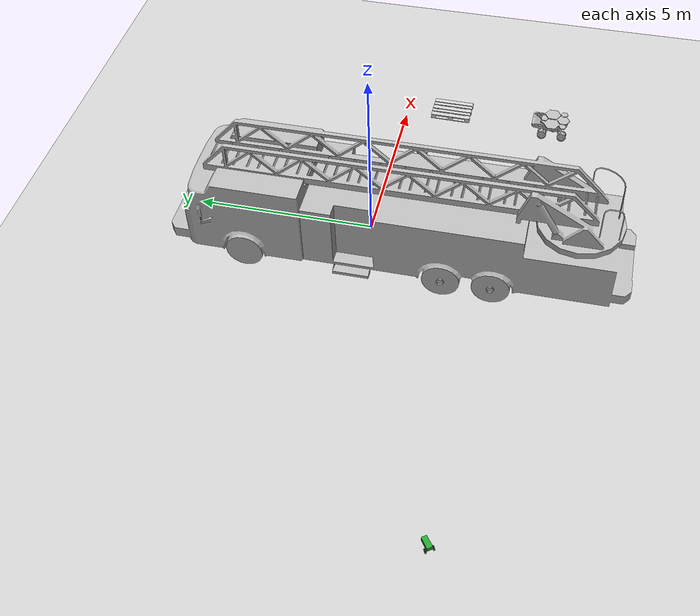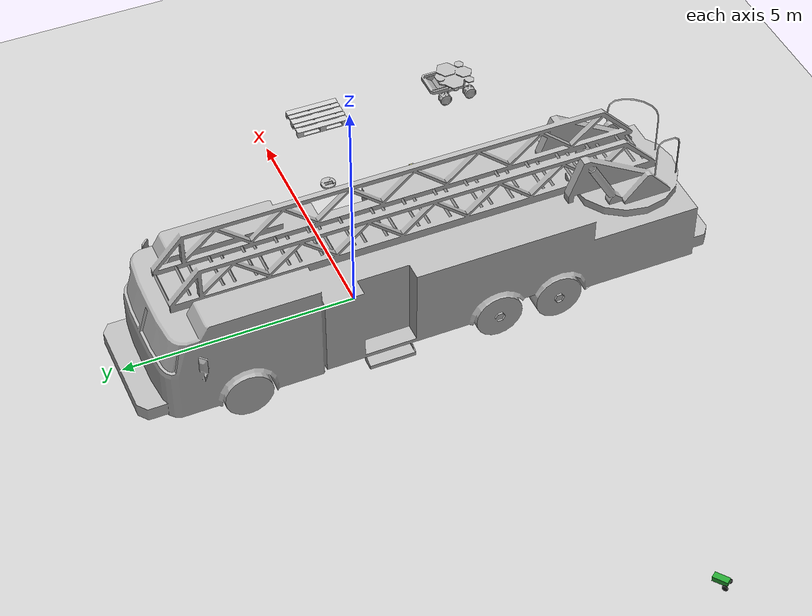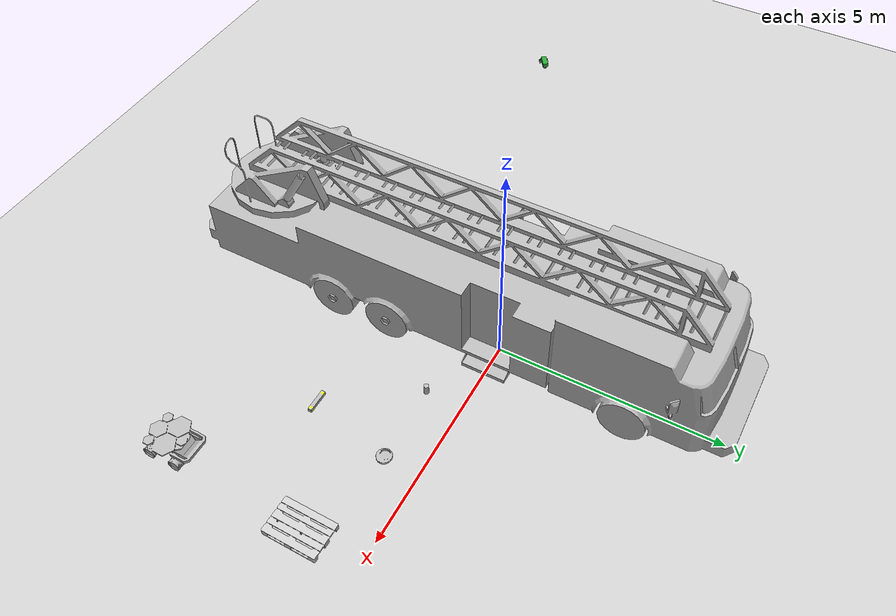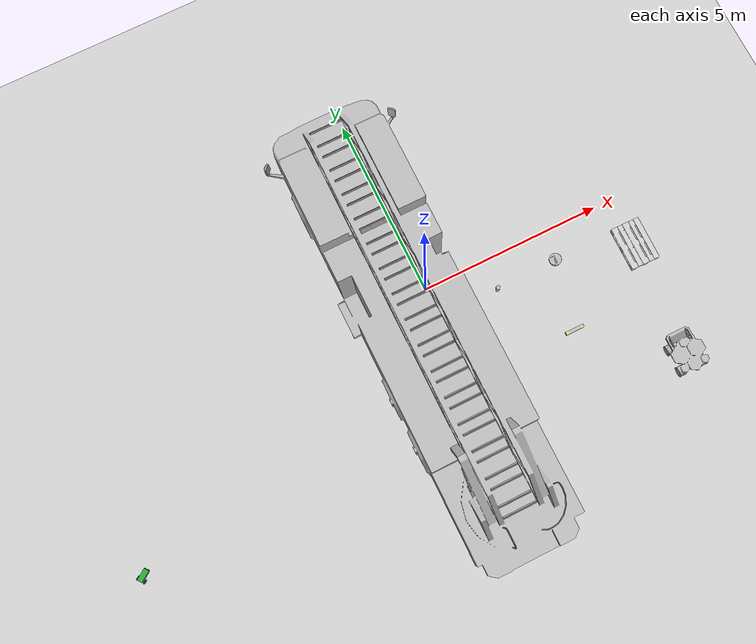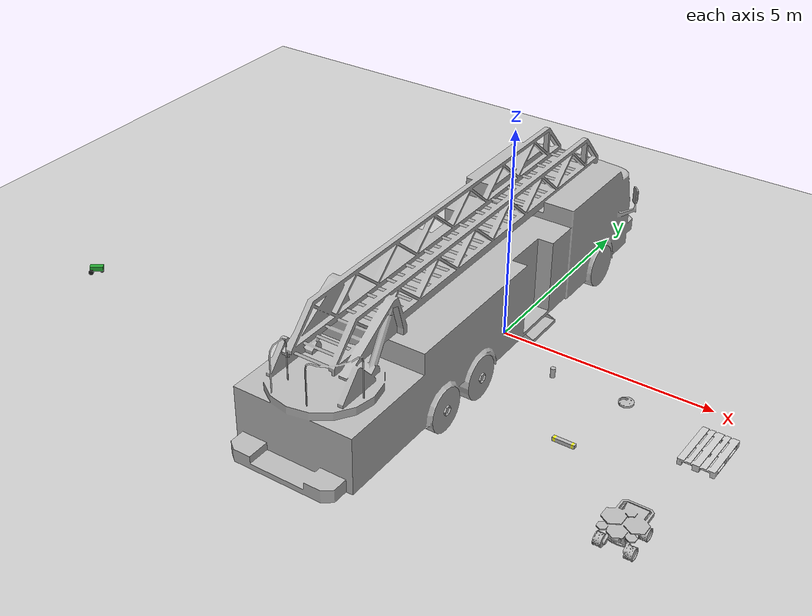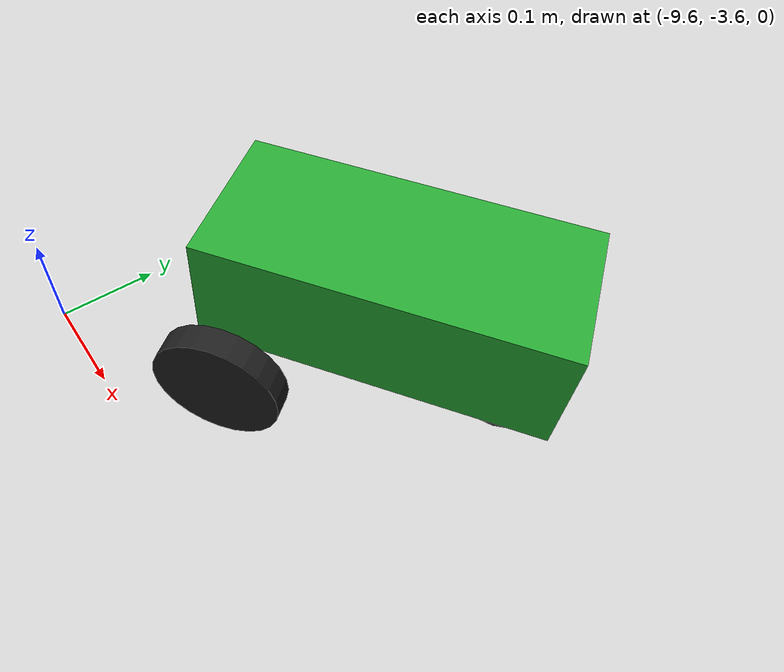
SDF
<sdf version="1.7">
 <world name="default">
  <light name="sun" type="directional">
   <pose>0 0 10 0 -0 0</pose>
   <diffuse>0.8 0.8 0.8 1</diffuse>
   <specular>0.2 0.2 0.2 1</specular>
   <attenuation>
    <range>1000</range>
    <constant>0.9</constant>
    <linear>0.01</linear>
    <quadratic>0.001</quadratic>
   </attenuation>
   <direction>-0.5 0.1 -0.9</direction>
   <spot><inner_angle>0</inner_angle><outer_angle>0</outer_angle><falloff>0</falloff></spot>
  </light>
  <model name="ground_plane">
   <static>1</static>
   <link name="link">
    <collision name="collision">
     <geometry><plane><normal>0 0 1</normal><size>100 100</size></plane></geometry>
     <surface>
      <contact><collide_bitmask>65535</collide_bitmask></contact>
      <friction><ode><mu>100</mu><mu2>50</mu2></ode></friction>
     </surface>
    </collision>
    <visual name="visual">
     <cast_shadows>0</cast_shadows>
     <geometry><plane><normal>0 0 1</normal><size>100 100</size></plane></geometry>
     <material>
      <script><uri>file://media/materials/scripts/gazebo.material</uri><name>Gazebo/Grey</name></script>
     </material>
    </visual>
   </link>
  </model>
  <gravity>0 0 -9.8</gravity>
  <magnetic_field>6e-06 2.3e-05 -4.2e-05</magnetic_field>
  <atmosphere type="adiabatic"/>
  <physics type="ode">
   <max_step_size>0.001</max_step_size>
   <real_time_factor>1</real_time_factor>
   <real_time_update_rate>1000</real_time_update_rate>
  </physics>
  <scene><ambient>0.4 0.4 0.4 1</ambient><background>0.7 0.7 0.7 1</background><shadows>1</shadows></scene>
  <audio><device>default</device></audio>
  <spherical_coordinates>
   <surface_model>EARTH_WGS84</surface_model>
   <latitude_deg>0</latitude_deg>
   <longitude_deg>0</longitude_deg>
   <elevation>0</elevation>
   <heading_deg>0</heading_deg>
  </spherical_coordinates>
  <model name="my_bot">
   <link name="base_link">
    <inertial>
     <pose>0.165 0 0.0625 0 -0 0</pose>
     <mass>0.6</mass>
     <inertia>
      <ixx>0.00525625</ixx>
      <ixy>0</ixy>
      <ixz>0.0005625</ixz>
      <iyy>0.00593125</iyy>
      <iyz>0</iyz>
      <izz>0.008275</izz>
     </inertia>
    </inertial>
    <collision name="base_link_fixed_joint_lump__chassis_collision">
     <pose>0.1245 0 0.075 0 -0 0</pose>
     <geometry><box><size>0.315 0.14 0.11</size></box></geometry>
    </collision>
    <collision name="base_link_fixed_joint_lump__caster_wheel_collision_1">
     <pose>0.24 0 0 0 -0 0</pose>
     <geometry><sphere><radius>0.05</radius></sphere></geometry>
     <surface><friction><ode><mu>0.001</mu><mu2>0.001</mu2></ode></friction></surface>
    </collision>
    <visual name="base_link_fixed_joint_lump__chassis_visual">
     <pose>0.1245 0 0.075 0 -0 0</pose>
     <geometry><box><size>0.315 0.14 0.11</size></box></geometry>
     <material>
      <script><name>Gazebo/Green</name><uri>file://media/materials/scripts/gazebo.material</uri></script>
     </material>
    </visual>
    <visual name="base_link_fixed_joint_lump__caster_wheel_visual_1">
     <pose>0.24 0 0 0 -0 0</pose>
     <geometry><sphere><radius>0.05</radius></sphere></geometry>
     <material>
      <script><name>Gazebo/Black</name><uri>file://media/materials/scripts/gazebo.material</uri></script>
     </material>
    </visual>
   </link>
   <joint name="left_wheel_joint" type="revolute">
    <pose relative_to="base_link">0 0.1 0 -1.5708 0 0</pose>
    <parent>base_link</parent>
    <child>left_wheel</child>
    <axis>
     <xyz>0 0 1</xyz>
     <limit><lower>-1e+16</lower><upper>1e+16</upper></limit>
     <dynamics><spring_reference>0</spring_reference><spring_stiffness>0</spring_stiffness></dynamics>
    </axis>
   </joint>
   <link name="left_wheel">
    <pose relative_to="left_wheel_joint">0 0 0 0 -0 0</pose>
    <inertial>
     <mass>0.1</mass>
     <inertia>
      <ixx>7.58333e-05</ixx>
      <ixy>0</ixy>
      <ixz>0</ixz>
      <iyy>7.58333e-05</iyy>
      <iyz>0</iyz>
      <izz>0.000125</izz>
     </inertia>
    </inertial>
    <collision name="left_wheel_collision">
     <geometry><cylinder><length>0.025</length><radius>0.06</radius></cylinder></geometry>
    </collision>
    <visual name="left_wheel_visual">
     <geometry><cylinder><length>0.025</length><radius>0.06</radius></cylinder></geometry>
     <material>
      <script><name>Gazebo/Black</name><uri>file://media/materials/scripts/gazebo.material</uri></script>
     </material>
    </visual>
   </link>
   <joint name="right_wheel_joint" type="revolute">
    <pose relative_to="base_link">0 -0.1 0 1.5708 -0 0</pose>
    <parent>base_link</parent>
    <child>right_wheel</child>
    <axis>
     <xyz>0 0 -1</xyz>
     <limit><lower>-1e+16</lower><upper>1e+16</upper></limit>
     <dynamics><spring_reference>0</spring_reference><spring_stiffness>0</spring_stiffness></dynamics>
    </axis>
   </joint>
   <link name="right_wheel">
    <pose relative_to="right_wheel_joint">0 0 0 0 -0 0</pose>
    <inertial>
     <mass>0.1</mass>
     <inertia>
      <ixx>7.58333e-05</ixx>
      <ixy>0</ixy>
      <ixz>0</ixz>
      <iyy>7.58333e-05</iyy>
      <iyz>0</iyz>
      <izz>0.000125</izz>
     </inertia>
    </inertial>
    <collision name="right_wheel_collision">
     <geometry><cylinder><length>0.025</length><radius>0.06</radius></cylinder></geometry>
    </collision>
    <visual name="right_wheel_visual">
     <geometry><cylinder><length>0.025</length><radius>0.06</radius></cylinder></geometry>
     <material>
      <script><name>Gazebo/Black</name><uri>file://media/materials/scripts/gazebo.material</uri></script>
     </material>
    </visual>
   </link>
   <static>0</static>
   <plugin name="diff_drive" filename="libgazebo_ros_diff_drive.so">
    <left_joint>left_wheel_joint</left_joint>
    <right_joint>right_wheel_joint</right_joint>
    <wheel_separation>0.2</wheel_separation>
    <wheel_diameter>0.12</wheel_diameter>
    <max_wheel_torque>200</max_wheel_torque>
    <max_wheel_acceleration>10.0</max_wheel_acceleration>
    <odometry_frame>odom</odometry_frame>
    <robot_base_frame>base_link</robot_base_frame>
    <publish_odom>1</publish_odom>
    <publish_odom_tf>1</publish_odom_tf>
    <publish_wheel_tf>1</publish_wheel_tf>
   </plugin>
   <pose>-9.45415 -3.44014 0.060014 4e-06 0.041738 0.627051</pose>
  </model>
  <model name="beer">
   <link name="link">
    <pose>0 0 0.115 0 -0 0</pose>
    <inertial>
     <mass>0.39</mass>
     <inertia><ixx>0.00058</ixx><ixy>0</ixy><ixz>0</ixz><iyy>0.00058</iyy><iyz>0</iyz><izz>0.00019</izz></inertia>
    </inertial>
    <collision name="collision">
     <geometry><cylinder><radius>0.055</radius><length>0.23</length></cylinder></geometry>
    </collision>
    <visual name="visual">
     <geometry><cylinder><radius>0.055</radius><length>0.23</length></cylinder></geometry>
     <material>
      <script>
       <uri>model://beer/materials/scripts</uri>
       <uri>model://beer/materials/textures</uri>
       <name>Beer/Diffuse</name>
      </script>
     </material>
    </visual>
   </link>
   <pose>1.67892 -0.832006 -7e-06 -0 -0 -1e-05</pose>
  </model>
  <model name="cinder_block_2">
   <link name="link">
    <inertial>
     <pose>0 0 0.071438 0 -0 0</pose>
     <mass>5</mass>
     <inertia>
      <ixx>0.06908</ixx>
      <ixy>0</ixy>
      <iyy>0.028705</iyy>
      <ixz>0</ixz>
      <iyz>0</iyz>
      <izz>0.073708</izz>
     </inertia>
    </inertial>
    <visual name="visual">
     <geometry><mesh><uri>model://cinder_block_2/meshes/cinder_block.dae</uri></mesh></geometry>
    </visual>
    <collision name="top">
     <pose>0 0 0.130175 0 -0 0</pose>
     <geometry><box><size>0.19368 0.396875 0.0254</size></box></geometry>
     <surface>
      <contact><ode><max_vel>0.1</max_vel><min_depth>0.001</min_depth></ode></contact>
      <friction><ode><mu>1</mu><mu2>1</mu2></ode></friction>
     </surface>
    </collision>
    <collision name="bottom">
     <pose>0 0 0.0127 0 -0 0</pose>
     <geometry><box><size>0.19368 0.396875 0.0254</size></box></geometry>
     <surface>
      <contact><ode><max_vel>0.1</max_vel><min_depth>0.001</min_depth></ode></contact>
      <friction><ode><mu>1</mu><mu2>1</mu2></ode></friction>
     </surface>
    </collision>
    <collision name="left">
     <pose>0 -0.185738 0.071438 0 -0 0</pose>
     <geometry><box><size>0.19368 0.0254 0.092075</size></box></geometry>
     <surface>
      <contact><ode><max_vel>0.1</max_vel><min_depth>0.001</min_depth></ode></contact>
      <friction><ode><mu>1</mu><mu2>1</mu2></ode></friction>
     </surface>
    </collision>
    <collision name="right">
     <pose>0 0.185738 0.071438 0 -0 0</pose>
     <geometry><box><size>0.19368 0.0254 0.092075</size></box></geometry>
     <surface>
      <contact><ode><max_vel>0.1</max_vel><min_depth>0.001</min_depth></ode></contact>
      <friction><ode><mu>1</mu><mu2>1</mu2></ode></friction>
     </surface>
    </collision>
    <collision name="middle">
     <pose>0 0 0.071438 0 -0 0</pose>
     <geometry><box><size>0.19368 0.0254 0.092075</size></box></geometry>
     <surface>
      <contact><ode><max_vel>0.1</max_vel><min_depth>0.001</min_depth></ode></contact>
      <friction><ode><mu>1</mu><mu2>1</mu2></ode></friction>
     </surface>
    </collision>
   </link>
   <pose>0.229339 -0.711936 -1e-05 0 -0 0</pose>
  </model>
  <model name="create">
   <link name="base">
    <inertial>
     <pose>0.001453 -0.000453 0.029787 0 -0 0</pose>
     <inertia>
      <ixx>0.05864</ixx>
      <ixy>0.000124</ixy>
      <ixz>0.000615</ixz>
      <iyy>0.058786</iyy>
      <iyz>1.4e-05</iyz>
      <izz>1.53244</izz>
     </inertia>
     <mass>2.234</mass>
    </inertial>
    <collision name="base_collision">
     <pose>0 0 0.0478 0 -0 0</pose>
     <geometry><cylinder><radius>0.016495</radius><length>0.061163</length></cylinder></geometry>
    </collision>
    <visual name="base_visual">
     <pose>0 0 0.0478 0 -0 0</pose>
     <geometry><mesh><uri>model://create/meshes/create_body.dae</uri></mesh></geometry>
    </visual>
    <collision name="front_wheel_collision">
     <pose>0.13 0 0.017 -0 1.5707 1.5707</pose>
     <geometry><sphere><radius>0.018</radius></sphere></geometry>
     <surface>
      <friction><ode><mu>0</mu><mu2>0</mu2><fdir1>0 0 0</fdir1><slip1>0</slip1><slip2>0</slip2></ode></friction>
     </surface>
    </collision>
    <visual name="front_wheel_visual">
     <pose>0.13 0 0.017 -0 1.5707 1.5707</pose>
     <geometry><sphere><radius>0.009</radius></sphere></geometry>
    </visual>
    <collision name="rear_wheel_collision">
     <pose>-0.13 0 0.017 -0 1.5707 1.5707</pose>
     <geometry><sphere><radius>0.015</radius></sphere></geometry>
     <surface>
      <friction><ode><mu>0</mu><mu2>0</mu2><fdir1>0 0 0</fdir1><slip1>0</slip1><slip2>0</slip2></ode></friction>
     </surface>
    </collision>
    <visual name="rear_wheel_visual">
     <pose>-0.13 0 0.017 -0 1.5707 1.5707</pose>
     <geometry><sphere><radius>0.0075</radius></sphere></geometry>
    </visual>
    <sensor name="left_cliff_sensor" type="ray">
     <pose>0.07 0.14 0.027 0 1.57079 0</pose>
     <ray>
      <scan>
       <horizontal>
        <samples>1</samples>
        <resolution>1</resolution>
        <min_angle>0</min_angle>
        <max_angle>0</max_angle>
       </horizontal>
       <vertical><samples>1</samples><min_angle>0</min_angle><max_angle>0</max_angle></vertical>
      </scan>
      <range><min>0.01</min><max>0.04</max><resolution>0.1</resolution></range>
     </ray>
    </sensor>
    <sensor name="leftfront_cliff_sensor" type="ray">
     <pose>0.15 0.04 0.027 0 1.57079 0</pose>
     <ray>
      <scan>
       <horizontal>
        <samples>1</samples>
        <resolution>1</resolution>
        <min_angle>0</min_angle>
        <max_angle>0</max_angle>
       </horizontal>
       <vertical><samples>1</samples><min_angle>0</min_angle><max_angle>0</max_angle></vertical>
      </scan>
      <range><min>0.01</min><max>0.04</max><resolution>0.1</resolution></range>
     </ray>
    </sensor>
    <sensor name="right_cliff_sensor" type="ray">
     <pose>0.07 -0.14 0.027 0 1.57079 0</pose>
     <ray>
      <scan>
       <horizontal>
        <samples>1</samples>
        <resolution>1</resolution>
        <min_angle>0</min_angle>
        <max_angle>0</max_angle>
       </horizontal>
       <vertical><samples>1</samples><min_angle>0</min_angle><max_angle>0</max_angle></vertical>
      </scan>
      <range><min>0.01</min><max>0.04</max><resolution>0.1</resolution></range>
     </ray>
    </sensor>
    <sensor name="rightfront_cliff_sensor" type="ray">
     <pose>0.15 -0.04 0.027 0 1.57079 0</pose>
     <ray>
      <scan>
       <horizontal>
        <samples>1</samples>
        <resolution>1</resolution>
        <min_angle>0</min_angle>
        <max_angle>0</max_angle>
       </horizontal>
       <vertical><samples>1</samples><min_angle>0</min_angle><max_angle>0</max_angle></vertical>
      </scan>
      <range><min>0.01</min><max>0.04</max><resolution>0.1</resolution></range>
     </ray>
    </sensor>
    <sensor name="wall_sensor" type="ray">
     <pose>0.09 -0.12 0.059 0 0 -1</pose>
     <ray>
      <scan>
       <horizontal>
        <samples>1</samples>
        <resolution>1</resolution>
        <min_angle>0</min_angle>
        <max_angle>0</max_angle>
       </horizontal>
       <vertical><samples>1</samples><min_angle>0</min_angle><max_angle>0</max_angle></vertical>
      </scan>
      <range><min>0.016</min><max>0.04</max><resolution>0.1</resolution></range>
     </ray>
    </sensor>
   </link>
   <link name="left_wheel">
    <pose>0 0.13 0.032 0 -0 0</pose>
    <inertial>
     <inertia><ixx>0.001</ixx><ixy>0</ixy><ixz>0</ixz><iyy>0.001</iyy><iyz>0</iyz><izz>0.001</izz></inertia>
     <mass>0.01</mass>
    </inertial>
    <collision name="collision">
     <pose>0 0 0 -0 1.5707 1.5707</pose>
     <geometry><cylinder><radius>0.033</radius><length>0.023</length></cylinder></geometry>
     <surface>
      <friction><ode><mu>10</mu><mu2>10</mu2><fdir1>0 0 0</fdir1><slip1>0</slip1><slip2>0</slip2></ode></friction>
     </surface>
    </collision>
    <visual name="visual">
     <pose>0 0 0 -0 1.5707 1.5707</pose>
     <geometry><cylinder><radius>0.033</radius><length>0.023</length></cylinder></geometry>
    </visual>
   </link>
   <link name="right_wheel">
    <pose>0 -0.13 0.032 0 -0 0</pose>
    <inertial>
     <inertia><ixx>0.001</ixx><ixy>0</ixy><ixz>0</ixz><iyy>0.001</iyy><iyz>0</iyz><izz>0.001</izz></inertia>
     <mass>0.01</mass>
    </inertial>
    <collision name="collision">
     <pose>0 0 0 -0 1.5707 1.5707</pose>
     <geometry><cylinder><radius>0.033</radius><length>0.023</length></cylinder></geometry>
     <surface>
      <friction><ode><mu>10</mu><mu2>10</mu2><fdir1>0 0 0</fdir1><slip1>0</slip1><slip2>0</slip2></ode></friction>
     </surface>
    </collision>
    <visual name="visual">
     <pose>0 0 0 -0 1.5707 1.5707</pose>
     <geometry><cylinder><radius>0.033</radius><length>0.023</length></cylinder></geometry>
    </visual>
   </link>
   <joint name="left_wheel" type="revolute">
    <parent>base</parent>
    <child>left_wheel</child>
    <axis>
     <xyz expressed_in="__model__">0 1 0</xyz>
     <limit><lower>-1e+16</lower><upper>1e+16</upper></limit>
     <dynamics><spring_reference>0</spring_reference><spring_stiffness>0</spring_stiffness></dynamics>
    </axis>
   </joint>
   <joint name="right_wheel" type="revolute">
    <parent>base</parent>
    <child>right_wheel</child>
    <axis>
     <xyz expressed_in="__model__">0 1 0</xyz>
     <limit><lower>-1e+16</lower><upper>1e+16</upper></limit>
     <dynamics><spring_reference>0</spring_reference><spring_stiffness>0</spring_stiffness></dynamics>
    </axis>
   </joint>
   <pose>3.39565 -0.798772 0.000943 -7.3e-05 -0.000621 -0.01114</pose>
  </model>
  <model name="lumber_4x4x20">
   <link name="link">
    <inertial>
     <mass>1.37</mass>
     <inertia><ixx>0.0018</ixx><ixy>0</ixy><ixz>0</ixz><iyy>0.0303</iyy><iyz>0</iyz><izz>0.0303</izz></inertia>
    </inertial>
    <collision name="collision">
     <geometry><box><size>0.508 0.0888 0.0888</size></box></geometry>
     <surface>
      <bounce><restitution_coefficient>0</restitution_coefficient><threshold>2</threshold></bounce>
      <friction><ode><mu>10</mu><mu2>10</mu2></ode></friction>
      <contact><ode><soft_cfm>0.001</soft_cfm><kp>100000</kp><kd>1000</kd></ode></contact>
     </surface>
    </collision>
    <visual name="visual">
     <geometry><mesh><uri>model://drc_practice_4x4x20/meshes/4x4x20.dae</uri></mesh></geometry>
    </visual>
   </link>
   <pose>2.95775 -2.67483 0.044367 0 -0 0</pose>
  </model>
  <model name="fire_truck">
   <static>1</static>
   <link name="link">
    <collision name="collision">
     <geometry>
      <mesh><scale>0.1 0.1 0.1</scale><uri>model://fire_truck/meshes/fire_truck.obj</uri></mesh>
     </geometry>
    </collision>
    <visual name="visual">
     <geometry>
      <mesh><scale>0.1 0.1 0.1</scale><uri>model://fire_truck/meshes/fire_truck.obj</uri></mesh>
     </geometry>
    </visual>
   </link>
   <pose>-0.639481 -0.687766 0 0 -0 0</pose>
  </model>
  <model name="euro_pallet">
   <link name="link">
    <inertial>
     <mass>20</mass>
     <inertia><ixx>2.43</ixx><ixy>0</ixy><ixz>0</ixz><iyy>1.1</iyy><iyz>0</iyz><izz>3.47</izz></inertia>
    </inertial>
    <collision name="collision">
     <pose>0 0 0.05 0 -0 0</pose>
     <geometry><mesh><uri>model://euro_pallet/meshes/pallet.dae</uri><scale>0.1 0.1 0.1</scale></mesh></geometry>
    </collision>
    <visual name="visual">
     <pose>0 0 0.05 0 -0 0</pose>
     <geometry><mesh><uri>model://euro_pallet/meshes/pallet.dae</uri><scale>0.1 0.1 0.1</scale></mesh></geometry>
    </visual>
   </link>
   <pose>5.45148 -1.35938 0.071997 0 -1e-05 -0.013016</pose>
  </model>
  <model name="mars_rover">
   <static>1</static>
   <link name="link">
    <collision name="solar_panel_collision">
     <pose>0 -0.06945 0.47293 0 -0 0</pose>
     <geometry><box><size>0.87974 0.8821 0.02602</size></box></geometry>
    </collision>
    <collision name="chassis_collision">
     <pose>0 -0.05 0.31475 0 -0 0</pose>
     <geometry><box><size>0.49522 0.67401 0.28915</size></box></geometry>
    </collision>
    <collision name="rear_left_bumper_collision">
     <pose>0.30107 0.3835 0.38976 0 -0 0</pose>
     <geometry><box><size>0.04442 0.38897 0.07918</size></box></geometry>
    </collision>
    <collision name="rear_right_bumper_collision">
     <pose>-0.30107 0.3835 0.38976 0 -0 0</pose>
     <geometry><box><size>0.04442 0.38897 0.07918</size></box></geometry>
    </collision>
    <collision name="rear_bumper_collision">
     <pose>0 0.59414 0.38976 0 -0 0</pose>
     <geometry><box><size>0.56656 0.04442 0.07918</size></box></geometry>
    </collision>
    <collision name="bin_back_panel_collision">
     <pose>0 0.47 0.32114 0.69137 -0 0</pose>
     <geometry><box><size>0.43774 0.212366 0.05173</size></box></geometry>
    </collision>
    <collision name="bin_left_panel_collision1">
     <pose>0.22615 0.32897 0.33193 0 -0 0</pose>
     <geometry><box><size>0.01116 0.19338 0.16304</size></box></geometry>
    </collision>
    <collision name="bin_left_panel_collision2">
     <pose>0.22615 0.471 0.39308 0 -0 0</pose>
     <geometry><box><size>0.01116 0.15 0.04</size></box></geometry>
    </collision>
    <collision name="bin_left_panel_collision3">
     <pose>0.22615 0.45 0.35308 0 -0 0</pose>
     <geometry><box><size>0.01116 0.15 0.04</size></box></geometry>
    </collision>
    <collision name="bin_left_panel_collision4">
     <pose>0.22615 0.39308 0.31308 0 -0 0</pose>
     <geometry><box><size>0.01116 0.15 0.04</size></box></geometry>
    </collision>
    <collision name="bin_right_panel_collision1">
     <pose>-0.22615 0.32897 0.33193 0 -0 0</pose>
     <geometry><box><size>0.01116 0.19338 0.16304</size></box></geometry>
    </collision>
    <collision name="bin_right_panel_collision2">
     <pose>-0.22615 0.471 0.39308 0 -0 0</pose>
     <geometry><box><size>0.01116 0.15 0.04</size></box></geometry>
    </collision>
    <collision name="bin_right_panel_collision3">
     <pose>-0.22615 0.45 0.35308 0 -0 0</pose>
     <geometry><box><size>0.01116 0.15 0.04</size></box></geometry>
    </collision>
    <collision name="bin_right_panel_collision4">
     <pose>-0.22615 0.39308 0.31308 0 -0 0</pose>
     <geometry><box><size>0.01116 0.15 0.04</size></box></geometry>
    </collision>
    <collision name="bin_front_panel_collision">
     <pose>0 0.30047 0.32114 2.26207 -0 0</pose>
     <geometry><box><size>0.43774 0.212366 0.05173</size></box></geometry>
    </collision>
    <collision name="front_left_wheel_collision">
     <pose>0.31103 -0.32115 0.1358 1.5707 0 1.5707</pose>
     <geometry><cylinder><radius>0.1358</radius><length>0.1641</length></cylinder></geometry>
    </collision>
    <collision name="front_right_wheel_collision">
     <pose>-0.31103 -0.32115 0.1358 1.5707 0 1.5707</pose>
     <geometry><cylinder><radius>0.1358</radius><length>0.1641</length></cylinder></geometry>
    </collision>
    <collision name="rear_left_wheel_collision">
     <pose>0.31103 0.28049 0.1358 1.5707 0 1.5707</pose>
     <geometry><cylinder><radius>0.1358</radius><length>0.1641</length></cylinder></geometry>
    </collision>
    <collision name="rear_right_wheel_collision">
     <pose>-0.31103 0.28049 0.1358 1.5707 0 1.5707</pose>
     <geometry><cylinder><radius>0.1358</radius><length>0.1641</length></cylinder></geometry>
    </collision>
    <visual name="visual">
     <geometry><mesh><uri>model://mars_rover/meshes/rover.dae</uri></mesh></geometry>
    </visual>
   </link>
   <pose>5.15886 -4.50792 0 0 -0 0</pose>
  </model>
 </world>
</sdf>
